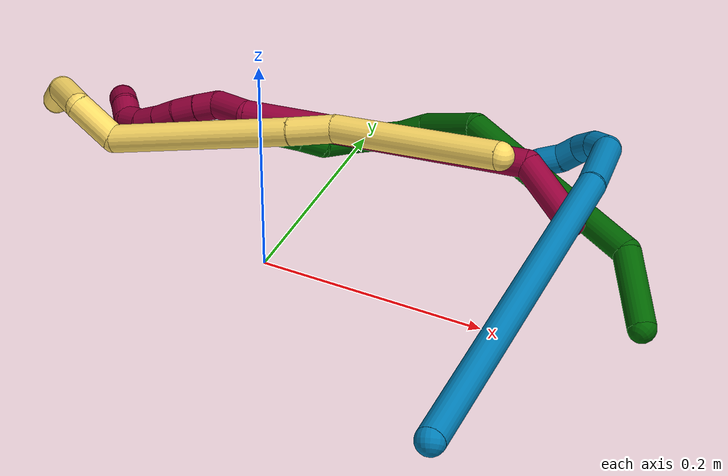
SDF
<sdf version="1.7">
 <world name="default">
  <model name="5">
   <static>0</static>
   <link name="5">
    <collision name="collision-cylinder-e_1_1_4">
     <pose>-0.073235 -0.017599 0.027775 0.564764 -1.14879 -0.371219</pose>
     <geometry><cylinder><radius>0.0125</radius><length>0.160556</length></cylinder></geometry>
     <surface>
      <friction><ode><mu>1.16</mu><mu2>1.16</mu2><slip1>0</slip1><slip2>0</slip2></ode></friction>
      <contact><ode><kp>1e+06</kp><kd>1</kd><max_vel>0</max_vel><min_depth>0.001</min_depth></ode></contact>
     </surface>
    </collision>
    <visual name="visual-cylinder-e_1_1_4">
     <pose>-0.073235 -0.017599 0.027775 0.564764 -1.14879 -0.371219</pose>
     <geometry><cylinder><radius>0.0125</radius><length>0.160556</length></cylinder></geometry>
     <material><ambient>1 0.858824 0.4 1</ambient></material>
    </visual>
    <collision name="collision-cylinder-e_2_4_5">
     <pose>-0.165169 -0.033636 0.06393 -0.184233 -1.14311 0.118688</pose>
     <geometry><cylinder><radius>0.0125</radius><length>0.0411</length></cylinder></geometry>
     <surface>
      <friction><ode><mu>1.16</mu><mu2>1.16</mu2><slip1>0</slip1><slip2>0</slip2></ode></friction>
      <contact><ode><kp>1e+06</kp><kd>1</kd><max_vel>0</max_vel><min_depth>0.001</min_depth></ode></contact>
     </surface>
    </collision>
    <visual name="visual-cylinder-e_2_4_5">
     <pose>-0.165169 -0.033636 0.06393 -0.184233 -1.14311 0.118688</pose>
     <geometry><cylinder><radius>0.0125</radius><length>0.0411</length></cylinder></geometry>
     <material><ambient>1 0.858824 0.4 1</ambient></material>
    </visual>
    <collision name="collision-cylinder-e_3_5_6">
     <pose>-0.261281 -0.031488 0.108441 -0.016234 -1.13406 0.010338</pose>
     <geometry><cylinder><radius>0.0125</radius><length>0.170862</length></cylinder></geometry>
     <surface>
      <friction><ode><mu>1.16</mu><mu2>1.16</mu2><slip1>0</slip1><slip2>0</slip2></ode></friction>
      <contact><ode><kp>1e+06</kp><kd>1</kd><max_vel>0</max_vel><min_depth>0.001</min_depth></ode></contact>
     </surface>
    </collision>
    <visual name="visual-cylinder-e_3_5_6">
     <pose>-0.261281 -0.031488 0.108441 -0.016234 -1.13406 0.010338</pose>
     <geometry><cylinder><radius>0.0125</radius><length>0.170862</length></cylinder></geometry>
     <material><ambient>1 0.858824 0.4 1</ambient></material>
    </visual>
    <collision name="collision-cylinder-e_4_6_7">
     <pose>-0.359802 -0.038319 0.139984 2.12475 -1.179 -1.75224</pose>
     <geometry><cylinder><radius>0.0125</radius><length>0.045681</length></cylinder></geometry>
     <surface>
      <friction><ode><mu>1.16</mu><mu2>1.16</mu2><slip1>0</slip1><slip2>0</slip2></ode></friction>
      <contact><ode><kp>1e+06</kp><kd>1</kd><max_vel>0</max_vel><min_depth>0.001</min_depth></ode></contact>
     </surface>
    </collision>
    <visual name="visual-cylinder-e_4_6_7">
     <pose>-0.359802 -0.038319 0.139984 2.12475 -1.179 -1.75224</pose>
     <geometry><cylinder><radius>0.0125</radius><length>0.045681</length></cylinder></geometry>
     <material><ambient>1 0.858824 0.4 1</ambient></material>
    </visual>
    <collision name="collision-cylinder-e_5_7_8">
     <pose>-0.396109 -0.063916 0.143349 1.15846 -0.653562 -0.436311</pose>
     <geometry><cylinder><radius>0.0125</radius><length>0.049989</length></cylinder></geometry>
     <surface>
      <friction><ode><mu>1.16</mu><mu2>1.16</mu2><slip1>0</slip1><slip2>0</slip2></ode></friction>
      <contact><ode><kp>1e+06</kp><kd>1</kd><max_vel>0</max_vel><min_depth>0.001</min_depth></ode></contact>
     </surface>
    </collision>
    <visual name="visual-cylinder-e_5_7_8">
     <pose>-0.396109 -0.063916 0.143349 1.15846 -0.653562 -0.436311</pose>
     <geometry><cylinder><radius>0.0125</radius><length>0.049989</length></cylinder></geometry>
     <material><ambient>1 0.858824 0.4 1</ambient></material>
    </visual>
    <collision name="collision-cylinder-e_6_8_2">
     <pose>-0.416345 -0.090334 0.163941 0.577561 -0.322358 -0.096531</pose>
     <geometry><cylinder><radius>0.0125</radius><length>0.031812</length></cylinder></geometry>
     <surface>
      <friction><ode><mu>1.16</mu><mu2>1.16</mu2><slip1>0</slip1><slip2>0</slip2></ode></friction>
      <contact><ode><kp>1e+06</kp><kd>1</kd><max_vel>0</max_vel><min_depth>0.001</min_depth></ode></contact>
     </surface>
    </collision>
    <visual name="visual-cylinder-e_6_8_2">
     <pose>-0.416345 -0.090334 0.163941 0.577561 -0.322358 -0.096531</pose>
     <geometry><cylinder><radius>0.0125</radius><length>0.031812</length></cylinder></geometry>
     <material><ambient>1 0.858824 0.4 1</ambient></material>
    </visual>
    <collision name="collision-sphere-2">
     <pose>-0.421384 -0.098571 0.17658 0 -0 0</pose>
     <geometry><sphere><radius>0.0125</radius></sphere></geometry>
     <surface>
      <friction><ode><mu>1.16</mu><mu2>1.16</mu2><slip1>0</slip1><slip2>0</slip2></ode></friction>
      <contact><ode><kp>1e+06</kp><kd>1</kd><max_vel>0</max_vel><min_depth>0.001</min_depth></ode></contact>
     </surface>
    </collision>
    <visual name="visual-sphere-2">
     <pose>-0.421384 -0.098571 0.17658 0 -0 0</pose>
     <geometry><sphere><radius>0.0125</radius></sphere></geometry>
     <material><ambient>1 0.858824 0.4 1</ambient></material>
    </visual>
    <collision name="collision-sphere-4">
     <pose>-0.14647 -0.035197 0.055551 0 -0 0</pose>
     <geometry><sphere><radius>0.0125</radius></sphere></geometry>
     <surface>
      <friction><ode><mu>1.16</mu><mu2>1.16</mu2><slip1>0</slip1><slip2>0</slip2></ode></friction>
      <contact><ode><kp>1e+06</kp><kd>1</kd><max_vel>0</max_vel><min_depth>0.001</min_depth></ode></contact>
     </surface>
    </collision>
    <visual name="visual-sphere-4">
     <pose>-0.14647 -0.035197 0.055551 0 -0 0</pose>
     <geometry><sphere><radius>0.0125</radius></sphere></geometry>
     <material><ambient>1 0.858824 0.4 1</ambient></material>
    </visual>
    <collision name="collision-sphere-1">
     <geometry><sphere><radius>0.0125</radius></sphere></geometry>
     <surface>
      <friction><ode><mu>1.16</mu><mu2>1.16</mu2><slip1>0</slip1><slip2>0</slip2></ode></friction>
      <contact><ode><kp>1e+06</kp><kd>1</kd><max_vel>0</max_vel><min_depth>0.001</min_depth></ode></contact>
     </surface>
    </collision>
    <visual name="visual-sphere-1">
     <geometry><sphere><radius>0.0125</radius></sphere></geometry>
     <material><ambient>1 0.858824 0.4 1</ambient></material>
    </visual>
    <collision name="collision-sphere-8">
     <pose>-0.411306 -0.082097 0.151301 0 -0 0</pose>
     <geometry><sphere><radius>0.0125</radius></sphere></geometry>
     <surface>
      <friction><ode><mu>1.16</mu><mu2>1.16</mu2><slip1>0</slip1><slip2>0</slip2></ode></friction>
      <contact><ode><kp>1e+06</kp><kd>1</kd><max_vel>0</max_vel><min_depth>0.001</min_depth></ode></contact>
     </surface>
    </collision>
    <visual name="visual-sphere-8">
     <pose>-0.411306 -0.082097 0.151301 0 -0 0</pose>
     <geometry><sphere><radius>0.0125</radius></sphere></geometry>
     <material><ambient>1 0.858824 0.4 1</ambient></material>
    </visual>
    <collision name="collision-sphere-5">
     <pose>-0.183869 -0.032074 0.07231 0 -0 0</pose>
     <geometry><sphere><radius>0.0125</radius></sphere></geometry>
     <surface>
      <friction><ode><mu>1.16</mu><mu2>1.16</mu2><slip1>0</slip1><slip2>0</slip2></ode></friction>
      <contact><ode><kp>1e+06</kp><kd>1</kd><max_vel>0</max_vel><min_depth>0.001</min_depth></ode></contact>
     </surface>
    </collision>
    <visual name="visual-sphere-5">
     <pose>-0.183869 -0.032074 0.07231 0 -0 0</pose>
     <geometry><sphere><radius>0.0125</radius></sphere></geometry>
     <material><ambient>1 0.858824 0.4 1</ambient></material>
    </visual>
    <collision name="collision-sphere-6">
     <pose>-0.338693 -0.030901 0.144572 0 -0 0</pose>
     <geometry><sphere><radius>0.0125</radius></sphere></geometry>
     <surface>
      <friction><ode><mu>1.16</mu><mu2>1.16</mu2><slip1>0</slip1><slip2>0</slip2></ode></friction>
      <contact><ode><kp>1e+06</kp><kd>1</kd><max_vel>0</max_vel><min_depth>0.001</min_depth></ode></contact>
     </surface>
    </collision>
    <visual name="visual-sphere-6">
     <pose>-0.338693 -0.030901 0.144572 0 -0 0</pose>
     <geometry><sphere><radius>0.0125</radius></sphere></geometry>
     <material><ambient>1 0.858824 0.4 1</ambient></material>
    </visual>
    <collision name="collision-sphere-7">
     <pose>-0.380912 -0.045736 0.135396 0 -0 0</pose>
     <geometry><sphere><radius>0.0125</radius></sphere></geometry>
     <surface>
      <friction><ode><mu>1.16</mu><mu2>1.16</mu2><slip1>0</slip1><slip2>0</slip2></ode></friction>
      <contact><ode><kp>1e+06</kp><kd>1</kd><max_vel>0</max_vel><min_depth>0.001</min_depth></ode></contact>
     </surface>
    </collision>
    <visual name="visual-sphere-7">
     <pose>-0.380912 -0.045736 0.135396 0 -0 0</pose>
     <geometry><sphere><radius>0.0125</radius></sphere></geometry>
     <material><ambient>1 0.858824 0.4 1</ambient></material>
    </visual>
    <inertial>
     <pose>-0.225343 -0.034815 0.088782 0 -0 0</pose>
     <mass>0.5</mass>
     <inertia>
      <ixx>0.000237</ixx>
      <ixy>0</ixy>
      <ixz>0</ixz>
      <iyy>0.000722</iyy>
      <iyz>0</iyz>
      <izz>0.000829</izz>
     </inertia>
    </inertial>
   </link>
   <pose>0.178007 0.081962 0.115296 3.07377 0.182267 0.111667</pose>
  </model>
  <model name="6">
   <static>0</static>
   <link name="6">
    <collision name="collision-cylinder-e_1_1_4">
     <pose>-0.022467 -0.003314 0.027411 0.120321 -0.683058 -0.042814</pose>
     <geometry><cylinder><radius>0.0125</radius><length>0.071193</length></cylinder></geometry>
     <surface>
      <friction><ode><mu>1.16</mu><mu2>1.16</mu2><slip1>0</slip1><slip2>0</slip2></ode></friction>
      <contact><ode><kp>1e+06</kp><kd>1</kd><max_vel>0</max_vel><min_depth>0.001</min_depth></ode></contact>
     </surface>
    </collision>
    <visual name="visual-cylinder-e_1_1_4">
     <pose>-0.022467 -0.003314 0.027411 0.120321 -0.683058 -0.042814</pose>
     <geometry><cylinder><radius>0.0125</radius><length>0.071193</length></cylinder></geometry>
     <material><ambient>0 0.392157 0.003922 1</ambient></material>
    </visual>
    <collision name="collision-cylinder-e_2_4_5">
     <pose>-0.13602 0.013402 0.089274 -0.526624 -1.15836 0.349012</pose>
     <geometry><cylinder><radius>0.0125</radius><length>0.198843</length></cylinder></geometry>
     <surface>
      <friction><ode><mu>1.16</mu><mu2>1.16</mu2><slip1>0</slip1><slip2>0</slip2></ode></friction>
      <contact><ode><kp>1e+06</kp><kd>1</kd><max_vel>0</max_vel><min_depth>0.001</min_depth></ode></contact>
     </surface>
    </collision>
    <visual name="visual-cylinder-e_2_4_5">
     <pose>-0.13602 0.013402 0.089274 -0.526624 -1.15836 0.349012</pose>
     <geometry><cylinder><radius>0.0125</radius><length>0.198843</length></cylinder></geometry>
     <material><ambient>0 0.392157 0.003922 1</ambient></material>
    </visual>
    <collision name="collision-cylinder-e_3_5_6">
     <pose>-0.25143 0.052959 0.124698 -1.5211 -0.893805 0.855658</pose>
     <geometry><cylinder><radius>0.0125</radius><length>0.062418</length></cylinder></geometry>
     <surface>
      <friction><ode><mu>1.16</mu><mu2>1.16</mu2><slip1>0</slip1><slip2>0</slip2></ode></friction>
      <contact><ode><kp>1e+06</kp><kd>1</kd><max_vel>0</max_vel><min_depth>0.001</min_depth></ode></contact>
     </surface>
    </collision>
    <visual name="visual-cylinder-e_3_5_6">
     <pose>-0.25143 0.052959 0.124698 -1.5211 -0.893805 0.855658</pose>
     <geometry><cylinder><radius>0.0125</radius><length>0.062418</length></cylinder></geometry>
     <material><ambient>0 0.392157 0.003922 1</ambient></material>
    </visual>
    <collision name="collision-cylinder-e_4_6_7">
     <pose>-0.286294 0.080819 0.120897 -2.09086 -0.831758 1.30206</pose>
     <geometry><cylinder><radius>0.0125</radius><length>0.028514</length></cylinder></geometry>
     <surface>
      <friction><ode><mu>1.16</mu><mu2>1.16</mu2><slip1>0</slip1><slip2>0</slip2></ode></friction>
      <contact><ode><kp>1e+06</kp><kd>1</kd><max_vel>0</max_vel><min_depth>0.001</min_depth></ode></contact>
     </surface>
    </collision>
    <visual name="visual-cylinder-e_4_6_7">
     <pose>-0.286294 0.080819 0.120897 -2.09086 -0.831758 1.30206</pose>
     <geometry><cylinder><radius>0.0125</radius><length>0.028514</length></cylinder></geometry>
     <material><ambient>0 0.392157 0.003922 1</ambient></material>
    </visual>
    <collision name="collision-cylinder-e_5_7_8">
     <pose>-0.314751 0.08711 0.098862 3.02378 -0.800594 -2.86462</pose>
     <geometry><cylinder><radius>0.0125</radius><length>0.049931</length></cylinder></geometry>
     <surface>
      <friction><ode><mu>1.16</mu><mu2>1.16</mu2><slip1>0</slip1><slip2>0</slip2></ode></friction>
      <contact><ode><kp>1e+06</kp><kd>1</kd><max_vel>0</max_vel><min_depth>0.001</min_depth></ode></contact>
     </surface>
    </collision>
    <visual name="visual-cylinder-e_5_7_8">
     <pose>-0.314751 0.08711 0.098862 3.02378 -0.800594 -2.86462</pose>
     <geometry><cylinder><radius>0.0125</radius><length>0.049931</length></cylinder></geometry>
     <material><ambient>0 0.392157 0.003922 1</ambient></material>
    </visual>
    <collision name="collision-cylinder-e_6_8_9">
     <pose>-0.339536 0.082062 0.07208 2.83589 -0.602442 -2.22092</pose>
     <geometry><cylinder><radius>0.0125</radius><length>0.024233</length></cylinder></geometry>
     <surface>
      <friction><ode><mu>1.16</mu><mu2>1.16</mu2><slip1>0</slip1><slip2>0</slip2></ode></friction>
      <contact><ode><kp>1e+06</kp><kd>1</kd><max_vel>0</max_vel><min_depth>0.001</min_depth></ode></contact>
     </surface>
    </collision>
    <visual name="visual-cylinder-e_6_8_9">
     <pose>-0.339536 0.082062 0.07208 2.83589 -0.602442 -2.22092</pose>
     <geometry><cylinder><radius>0.0125</radius><length>0.024233</length></cylinder></geometry>
     <material><ambient>0 0.392157 0.003922 1</ambient></material>
    </visual>
    <collision name="collision-cylinder-e_7_9_10">
     <pose>-0.355403 0.073744 0.0564 2.42979 -0.835993 -1.7479</pose>
     <geometry><cylinder><radius>0.0125</radius><length>0.024263</length></cylinder></geometry>
     <surface>
      <friction><ode><mu>1.16</mu><mu2>1.16</mu2><slip1>0</slip1><slip2>0</slip2></ode></friction>
      <contact><ode><kp>1e+06</kp><kd>1</kd><max_vel>0</max_vel><min_depth>0.001</min_depth></ode></contact>
     </surface>
    </collision>
    <visual name="visual-cylinder-e_7_9_10">
     <pose>-0.355403 0.073744 0.0564 2.42979 -0.835993 -1.7479</pose>
     <geometry><cylinder><radius>0.0125</radius><length>0.024263</length></cylinder></geometry>
     <material><ambient>0 0.392157 0.003922 1</ambient></material>
    </visual>
    <collision name="collision-cylinder-e_8_10_11">
     <pose>-0.372106 0.064422 0.044725 2.51316 -0.84603 -1.89109</pose>
     <geometry><cylinder><radius>0.0125</radius><length>0.020574</length></cylinder></geometry>
     <surface>
      <friction><ode><mu>1.16</mu><mu2>1.16</mu2><slip1>0</slip1><slip2>0</slip2></ode></friction>
      <contact><ode><kp>1e+06</kp><kd>1</kd><max_vel>0</max_vel><min_depth>0.001</min_depth></ode></contact>
     </surface>
    </collision>
    <visual name="visual-cylinder-e_8_10_11">
     <pose>-0.372106 0.064422 0.044725 2.51316 -0.84603 -1.89109</pose>
     <geometry><cylinder><radius>0.0125</radius><length>0.020574</length></cylinder></geometry>
     <material><ambient>0 0.392157 0.003922 1</ambient></material>
    </visual>
    <collision name="collision-cylinder-e_9_11_2">
     <pose>-0.384965 0.05479 0.032719 2.42757 -0.540993 -1.27855</pose>
     <geometry><cylinder><radius>0.0125</radius><length>0.020032</length></cylinder></geometry>
     <surface>
      <friction><ode><mu>1.16</mu><mu2>1.16</mu2><slip1>0</slip1><slip2>0</slip2></ode></friction>
      <contact><ode><kp>1e+06</kp><kd>1</kd><max_vel>0</max_vel><min_depth>0.001</min_depth></ode></contact>
     </surface>
    </collision>
    <visual name="visual-cylinder-e_9_11_2">
     <pose>-0.384965 0.05479 0.032719 2.42757 -0.540993 -1.27855</pose>
     <geometry><cylinder><radius>0.0125</radius><length>0.020032</length></cylinder></geometry>
     <material><ambient>0 0.392157 0.003922 1</ambient></material>
    </visual>
    <collision name="collision-sphere-2">
     <pose>-0.390123 0.049168 0.026231 0 -0 0</pose>
     <geometry><sphere><radius>0.0125</radius></sphere></geometry>
     <surface>
      <friction><ode><mu>1.16</mu><mu2>1.16</mu2><slip1>0</slip1><slip2>0</slip2></ode></friction>
      <contact><ode><kp>1e+06</kp><kd>1</kd><max_vel>0</max_vel><min_depth>0.001</min_depth></ode></contact>
     </surface>
    </collision>
    <visual name="visual-sphere-2">
     <pose>-0.390123 0.049168 0.026231 0 -0 0</pose>
     <geometry><sphere><radius>0.0125</radius></sphere></geometry>
     <material><ambient>0 0.392157 0.003922 1</ambient></material>
    </visual>
    <collision name="collision-sphere-11">
     <pose>-0.379807 0.060413 0.039208 0 -0 0</pose>
     <geometry><sphere><radius>0.0125</radius></sphere></geometry>
     <surface>
      <friction><ode><mu>1.16</mu><mu2>1.16</mu2><slip1>0</slip1><slip2>0</slip2></ode></friction>
      <contact><ode><kp>1e+06</kp><kd>1</kd><max_vel>0</max_vel><min_depth>0.001</min_depth></ode></contact>
     </surface>
    </collision>
    <visual name="visual-sphere-11">
     <pose>-0.379807 0.060413 0.039208 0 -0 0</pose>
     <geometry><sphere><radius>0.0125</radius></sphere></geometry>
     <material><ambient>0 0.392157 0.003922 1</ambient></material>
    </visual>
    <collision name="collision-sphere-10">
     <pose>-0.364404 0.068431 0.050242 0 -0 0</pose>
     <geometry><sphere><radius>0.0125</radius></sphere></geometry>
     <surface>
      <friction><ode><mu>1.16</mu><mu2>1.16</mu2><slip1>0</slip1><slip2>0</slip2></ode></friction>
      <contact><ode><kp>1e+06</kp><kd>1</kd><max_vel>0</max_vel><min_depth>0.001</min_depth></ode></contact>
     </surface>
    </collision>
    <visual name="visual-sphere-10">
     <pose>-0.364404 0.068431 0.050242 0 -0 0</pose>
     <geometry><sphere><radius>0.0125</radius></sphere></geometry>
     <material><ambient>0 0.392157 0.003922 1</ambient></material>
    </visual>
    <collision name="collision-sphere-9">
     <pose>-0.346402 0.079057 0.062559 0 -0 0</pose>
     <geometry><sphere><radius>0.0125</radius></sphere></geometry>
     <surface>
      <friction><ode><mu>1.16</mu><mu2>1.16</mu2><slip1>0</slip1><slip2>0</slip2></ode></friction>
      <contact><ode><kp>1e+06</kp><kd>1</kd><max_vel>0</max_vel><min_depth>0.001</min_depth></ode></contact>
     </surface>
    </collision>
    <visual name="visual-sphere-9">
     <pose>-0.346402 0.079057 0.062559 0 -0 0</pose>
     <geometry><sphere><radius>0.0125</radius></sphere></geometry>
     <material><ambient>0 0.392157 0.003922 1</ambient></material>
    </visual>
    <collision name="collision-sphere-4">
     <pose>-0.044935 -0.006628 0.054821 0 -0 0</pose>
     <geometry><sphere><radius>0.0125</radius></sphere></geometry>
     <surface>
      <friction><ode><mu>1.16</mu><mu2>1.16</mu2><slip1>0</slip1><slip2>0</slip2></ode></friction>
      <contact><ode><kp>1e+06</kp><kd>1</kd><max_vel>0</max_vel><min_depth>0.001</min_depth></ode></contact>
     </surface>
    </collision>
    <visual name="visual-sphere-4">
     <pose>-0.044935 -0.006628 0.054821 0 -0 0</pose>
     <geometry><sphere><radius>0.0125</radius></sphere></geometry>
     <material><ambient>0 0.392157 0.003922 1</ambient></material>
    </visual>
    <collision name="collision-sphere-1">
     <geometry><sphere><radius>0.0125</radius></sphere></geometry>
     <surface>
      <friction><ode><mu>1.16</mu><mu2>1.16</mu2><slip1>0</slip1><slip2>0</slip2></ode></friction>
      <contact><ode><kp>1e+06</kp><kd>1</kd><max_vel>0</max_vel><min_depth>0.001</min_depth></ode></contact>
     </surface>
    </collision>
    <visual name="visual-sphere-1">
     <geometry><sphere><radius>0.0125</radius></sphere></geometry>
     <material><ambient>0 0.392157 0.003922 1</ambient></material>
    </visual>
    <collision name="collision-sphere-8">
     <pose>-0.33267 0.085066 0.0816 0 -0 0</pose>
     <geometry><sphere><radius>0.0125</radius></sphere></geometry>
     <surface>
      <friction><ode><mu>1.16</mu><mu2>1.16</mu2><slip1>0</slip1><slip2>0</slip2></ode></friction>
      <contact><ode><kp>1e+06</kp><kd>1</kd><max_vel>0</max_vel><min_depth>0.001</min_depth></ode></contact>
     </surface>
    </collision>
    <visual name="visual-sphere-8">
     <pose>-0.33267 0.085066 0.0816 0 -0 0</pose>
     <geometry><sphere><radius>0.0125</radius></sphere></geometry>
     <material><ambient>0 0.392157 0.003922 1</ambient></material>
    </visual>
    <collision name="collision-sphere-5">
     <pose>-0.227104 0.033433 0.123726 0 -0 0</pose>
     <geometry><sphere><radius>0.0125</radius></sphere></geometry>
     <surface>
      <friction><ode><mu>1.16</mu><mu2>1.16</mu2><slip1>0</slip1><slip2>0</slip2></ode></friction>
      <contact><ode><kp>1e+06</kp><kd>1</kd><max_vel>0</max_vel><min_depth>0.001</min_depth></ode></contact>
     </surface>
    </collision>
    <visual name="visual-sphere-5">
     <pose>-0.227104 0.033433 0.123726 0 -0 0</pose>
     <geometry><sphere><radius>0.0125</radius></sphere></geometry>
     <material><ambient>0 0.392157 0.003922 1</ambient></material>
    </visual>
    <collision name="collision-sphere-6">
     <pose>-0.275757 0.072486 0.125669 0 -0 0</pose>
     <geometry><sphere><radius>0.0125</radius></sphere></geometry>
     <surface>
      <friction><ode><mu>1.16</mu><mu2>1.16</mu2><slip1>0</slip1><slip2>0</slip2></ode></friction>
      <contact><ode><kp>1e+06</kp><kd>1</kd><max_vel>0</max_vel><min_depth>0.001</min_depth></ode></contact>
     </surface>
    </collision>
    <visual name="visual-sphere-6">
     <pose>-0.275757 0.072486 0.125669 0 -0 0</pose>
     <geometry><sphere><radius>0.0125</radius></sphere></geometry>
     <material><ambient>0 0.392157 0.003922 1</ambient></material>
    </visual>
    <collision name="collision-sphere-7">
     <pose>-0.296831 0.089153 0.116125 0 -0 0</pose>
     <geometry><sphere><radius>0.0125</radius></sphere></geometry>
     <surface>
      <friction><ode><mu>1.16</mu><mu2>1.16</mu2><slip1>0</slip1><slip2>0</slip2></ode></friction>
      <contact><ode><kp>1e+06</kp><kd>1</kd><max_vel>0</max_vel><min_depth>0.001</min_depth></ode></contact>
     </surface>
    </collision>
    <visual name="visual-sphere-7">
     <pose>-0.296831 0.089153 0.116125 0 -0 0</pose>
     <geometry><sphere><radius>0.0125</radius></sphere></geometry>
     <material><ambient>0 0.392157 0.003922 1</ambient></material>
    </visual>
    <inertial>
     <pose>-0.200874 0.037179 0.081121 0 -0 0</pose>
     <mass>0.5</mass>
     <inertia>
      <ixx>0.00034</ixx>
      <ixy>0</ixy>
      <ixz>0</ixz>
      <iyy>0.000806</iyy>
      <iyz>0</iyz>
      <izz>0.000521</izz>
     </inertia>
    </inertial>
   </link>
   <pose>0.32372 0.045172 0.011474 -1.31406 0.189152 -0.087514</pose>
  </model>
  <model name="8">
   <static>0</static>
   <link name="8">
    <collision name="collision-cylinder-e_1_1_4">
     <pose>-0.031686 -0.004825 0.003333 0.966213 -1.3878 -0.822963</pose>
     <geometry><cylinder><radius>0.0125</radius><length>0.064449</length></cylinder></geometry>
     <surface>
      <friction><ode><mu>1.16</mu><mu2>1.16</mu2><slip1>0</slip1><slip2>0</slip2></ode></friction>
      <contact><ode><kp>1e+06</kp><kd>1</kd><max_vel>0</max_vel><min_depth>0.001</min_depth></ode></contact>
     </surface>
    </collision>
    <visual name="visual-cylinder-e_1_1_4">
     <pose>-0.031686 -0.004825 0.003333 0.966213 -1.3878 -0.822963</pose>
     <geometry><cylinder><radius>0.0125</radius><length>0.064449</length></cylinder></geometry>
     <material><ambient>0.584314 0 0.227451 1</ambient></material>
    </visual>
    <collision name="collision-cylinder-e_2_4_5">
     <pose>-0.153549 0.008635 0.096162 -0.201533 -0.778966 0.082953</pose>
     <geometry><cylinder><radius>0.0125</radius><length>0.256715</length></cylinder></geometry>
     <surface>
      <friction><ode><mu>1.16</mu><mu2>1.16</mu2><slip1>0</slip1><slip2>0</slip2></ode></friction>
      <contact><ode><kp>1e+06</kp><kd>1</kd><max_vel>0</max_vel><min_depth>0.001</min_depth></ode></contact>
     </surface>
    </collision>
    <visual name="visual-cylinder-e_2_4_5">
     <pose>-0.153549 0.008635 0.096162 -0.201533 -0.778966 0.082953</pose>
     <geometry><cylinder><radius>0.0125</radius><length>0.256715</length></cylinder></geometry>
     <material><ambient>0.584314 0 0.227451 1</ambient></material>
    </visual>
    <collision name="collision-cylinder-e_3_5_6">
     <pose>-0.25684 0.021868 0.196953 0.420592 -0.814416 -0.183613</pose>
     <geometry><cylinder><radius>0.0125</radius><length>0.03606</length></cylinder></geometry>
     <surface>
      <friction><ode><mu>1.16</mu><mu2>1.16</mu2><slip1>0</slip1><slip2>0</slip2></ode></friction>
      <contact><ode><kp>1e+06</kp><kd>1</kd><max_vel>0</max_vel><min_depth>0.001</min_depth></ode></contact>
     </surface>
    </collision>
    <visual name="visual-cylinder-e_3_5_6">
     <pose>-0.25684 0.021868 0.196953 0.420592 -0.814416 -0.183613</pose>
     <geometry><cylinder><radius>0.0125</radius><length>0.03606</length></cylinder></geometry>
     <material><ambient>0.584314 0 0.227451 1</ambient></material>
    </visual>
    <collision name="collision-cylinder-e_4_6_7">
     <pose>-0.274407 0.017764 0.217277 -0.104679 -0.456053 0.024313</pose>
     <geometry><cylinder><radius>0.0125</radius><length>0.020224</length></cylinder></geometry>
     <surface>
      <friction><ode><mu>1.16</mu><mu2>1.16</mu2><slip1>0</slip1><slip2>0</slip2></ode></friction>
      <contact><ode><kp>1e+06</kp><kd>1</kd><max_vel>0</max_vel><min_depth>0.001</min_depth></ode></contact>
     </surface>
    </collision>
    <visual name="visual-cylinder-e_4_6_7">
     <pose>-0.274407 0.017764 0.217277 -0.104679 -0.456053 0.024313</pose>
     <geometry><cylinder><radius>0.0125</radius><length>0.020224</length></cylinder></geometry>
     <material><ambient>0.584314 0 0.227451 1</ambient></material>
    </visual>
    <collision name="collision-cylinder-e_5_7_8">
     <pose>-0.283151 0.019207 0.235887 -0.051504 -0.420613 0.010997</pose>
     <geometry><cylinder><radius>0.0125</radius><length>0.02102</length></cylinder></geometry>
     <surface>
      <friction><ode><mu>1.16</mu><mu2>1.16</mu2><slip1>0</slip1><slip2>0</slip2></ode></friction>
      <contact><ode><kp>1e+06</kp><kd>1</kd><max_vel>0</max_vel><min_depth>0.001</min_depth></ode></contact>
     </surface>
    </collision>
    <visual name="visual-cylinder-e_5_7_8">
     <pose>-0.283151 0.019207 0.235887 -0.051504 -0.420613 0.010997</pose>
     <geometry><cylinder><radius>0.0125</radius><length>0.02102</length></cylinder></geometry>
     <material><ambient>0.584314 0 0.227451 1</ambient></material>
    </visual>
    <collision name="collision-cylinder-e_6_8_9">
     <pose>-0.290935 0.019017 0.255286 0.069526 -0.340987 -0.011975</pose>
     <geometry><cylinder><radius>0.0125</radius><length>0.020887</length></cylinder></geometry>
     <surface>
      <friction><ode><mu>1.16</mu><mu2>1.16</mu2><slip1>0</slip1><slip2>0</slip2></ode></friction>
      <contact><ode><kp>1e+06</kp><kd>1</kd><max_vel>0</max_vel><min_depth>0.001</min_depth></ode></contact>
     </surface>
    </collision>
    <visual name="visual-cylinder-e_6_8_9">
     <pose>-0.290935 0.019017 0.255286 0.069526 -0.340987 -0.011975</pose>
     <geometry><cylinder><radius>0.0125</radius><length>0.020887</length></cylinder></geometry>
     <material><ambient>0.584314 0 0.227451 1</ambient></material>
    </visual>
    <collision name="collision-cylinder-e_7_9_10">
     <pose>-0.298902 0.017089 0.274272 0.134842 -0.450504 -0.030942</pose>
     <geometry><cylinder><radius>0.0125</radius><length>0.020555</length></cylinder></geometry>
     <surface>
      <friction><ode><mu>1.16</mu><mu2>1.16</mu2><slip1>0</slip1><slip2>0</slip2></ode></friction>
      <contact><ode><kp>1e+06</kp><kd>1</kd><max_vel>0</max_vel><min_depth>0.001</min_depth></ode></contact>
     </surface>
    </collision>
    <visual name="visual-cylinder-e_7_9_10">
     <pose>-0.298902 0.017089 0.274272 0.134842 -0.450504 -0.030942</pose>
     <geometry><cylinder><radius>0.0125</radius><length>0.020555</length></cylinder></geometry>
     <material><ambient>0.584314 0 0.227451 1</ambient></material>
    </visual>
    <collision name="collision-cylinder-e_8_10_11">
     <pose>-0.310027 0.012776 0.290288 0.421373 -0.725102 -0.161887</pose>
     <geometry><cylinder><radius>0.0125</radius><length>0.020053</length></cylinder></geometry>
     <surface>
      <friction><ode><mu>1.16</mu><mu2>1.16</mu2><slip1>0</slip1><slip2>0</slip2></ode></friction>
      <contact><ode><kp>1e+06</kp><kd>1</kd><max_vel>0</max_vel><min_depth>0.001</min_depth></ode></contact>
     </surface>
    </collision>
    <visual name="visual-cylinder-e_8_10_11">
     <pose>-0.310027 0.012776 0.290288 0.421373 -0.725102 -0.161887</pose>
     <geometry><cylinder><radius>0.0125</radius><length>0.020053</length></cylinder></geometry>
     <material><ambient>0.584314 0 0.227451 1</ambient></material>
    </visual>
    <collision name="collision-cylinder-e_9_11_12">
     <pose>-0.324426 0.003395 0.297776 1.46978 -0.884768 -0.809005</pose>
     <geometry><cylinder><radius>0.0125</radius><length>0.02003</length></cylinder></geometry>
     <surface>
      <friction><ode><mu>1.16</mu><mu2>1.16</mu2><slip1>0</slip1><slip2>0</slip2></ode></friction>
      <contact><ode><kp>1e+06</kp><kd>1</kd><max_vel>0</max_vel><min_depth>0.001</min_depth></ode></contact>
     </surface>
    </collision>
    <visual name="visual-cylinder-e_9_11_12">
     <pose>-0.324426 0.003395 0.297776 1.46978 -0.884768 -0.809005</pose>
     <geometry><cylinder><radius>0.0125</radius><length>0.02003</length></cylinder></geometry>
     <material><ambient>0.584314 0 0.227451 1</ambient></material>
    </visual>
    <collision name="collision-cylinder-e_10_12_2">
     <pose>-0.338172 -0.010414 0.301233 1.21136 -0.642667 -0.453115</pose>
     <geometry><cylinder><radius>0.0125</radius><length>0.020008</length></cylinder></geometry>
     <surface>
      <friction><ode><mu>1.16</mu><mu2>1.16</mu2><slip1>0</slip1><slip2>0</slip2></ode></friction>
      <contact><ode><kp>1e+06</kp><kd>1</kd><max_vel>0</max_vel><min_depth>0.001</min_depth></ode></contact>
     </surface>
    </collision>
    <visual name="visual-cylinder-e_10_12_2">
     <pose>-0.338172 -0.010414 0.301233 1.21136 -0.642667 -0.453115</pose>
     <geometry><cylinder><radius>0.0125</radius><length>0.020008</length></cylinder></geometry>
     <material><ambient>0.584314 0 0.227451 1</ambient></material>
    </visual>
    <collision name="collision-sphere-2">
     <pose>-0.344168 -0.01791 0.304049 0 -0 0</pose>
     <geometry><sphere><radius>0.0125</radius></sphere></geometry>
     <surface>
      <friction><ode><mu>1.16</mu><mu2>1.16</mu2><slip1>0</slip1><slip2>0</slip2></ode></friction>
      <contact><ode><kp>1e+06</kp><kd>1</kd><max_vel>0</max_vel><min_depth>0.001</min_depth></ode></contact>
     </surface>
    </collision>
    <visual name="visual-sphere-2">
     <pose>-0.344168 -0.01791 0.304049 0 -0 0</pose>
     <geometry><sphere><radius>0.0125</radius></sphere></geometry>
     <material><ambient>0.584314 0 0.227451 1</ambient></material>
    </visual>
    <collision name="collision-sphere-12">
     <pose>-0.332176 -0.002917 0.298416 0 -0 0</pose>
     <geometry><sphere><radius>0.0125</radius></sphere></geometry>
     <surface>
      <friction><ode><mu>1.16</mu><mu2>1.16</mu2><slip1>0</slip1><slip2>0</slip2></ode></friction>
      <contact><ode><kp>1e+06</kp><kd>1</kd><max_vel>0</max_vel><min_depth>0.001</min_depth></ode></contact>
     </surface>
    </collision>
    <visual name="visual-sphere-12">
     <pose>-0.332176 -0.002917 0.298416 0 -0 0</pose>
     <geometry><sphere><radius>0.0125</radius></sphere></geometry>
     <material><ambient>0.584314 0 0.227451 1</ambient></material>
    </visual>
    <collision name="collision-sphere-11">
     <pose>-0.316677 0.009707 0.297136 0 -0 0</pose>
     <geometry><sphere><radius>0.0125</radius></sphere></geometry>
     <surface>
      <friction><ode><mu>1.16</mu><mu2>1.16</mu2><slip1>0</slip1><slip2>0</slip2></ode></friction>
      <contact><ode><kp>1e+06</kp><kd>1</kd><max_vel>0</max_vel><min_depth>0.001</min_depth></ode></contact>
     </surface>
    </collision>
    <visual name="visual-sphere-11">
     <pose>-0.316677 0.009707 0.297136 0 -0 0</pose>
     <geometry><sphere><radius>0.0125</radius></sphere></geometry>
     <material><ambient>0.584314 0 0.227451 1</ambient></material>
    </visual>
    <collision name="collision-sphere-10">
     <pose>-0.303377 0.015846 0.28344 0 -0 0</pose>
     <geometry><sphere><radius>0.0125</radius></sphere></geometry>
     <surface>
      <friction><ode><mu>1.16</mu><mu2>1.16</mu2><slip1>0</slip1><slip2>0</slip2></ode></friction>
      <contact><ode><kp>1e+06</kp><kd>1</kd><max_vel>0</max_vel><min_depth>0.001</min_depth></ode></contact>
     </surface>
    </collision>
    <visual name="visual-sphere-10">
     <pose>-0.303377 0.015846 0.28344 0 -0 0</pose>
     <geometry><sphere><radius>0.0125</radius></sphere></geometry>
     <material><ambient>0.584314 0 0.227451 1</ambient></material>
    </visual>
    <collision name="collision-sphere-9">
     <pose>-0.294427 0.018333 0.265105 0 -0 0</pose>
     <geometry><sphere><radius>0.0125</radius></sphere></geometry>
     <surface>
      <friction><ode><mu>1.16</mu><mu2>1.16</mu2><slip1>0</slip1><slip2>0</slip2></ode></friction>
      <contact><ode><kp>1e+06</kp><kd>1</kd><max_vel>0</max_vel><min_depth>0.001</min_depth></ode></contact>
     </surface>
    </collision>
    <visual name="visual-sphere-9">
     <pose>-0.294427 0.018333 0.265105 0 -0 0</pose>
     <geometry><sphere><radius>0.0125</radius></sphere></geometry>
     <material><ambient>0.584314 0 0.227451 1</ambient></material>
    </visual>
    <collision name="collision-sphere-4">
     <pose>-0.063372 -0.009649 0.006666 0 -0 0</pose>
     <geometry><sphere><radius>0.0125</radius></sphere></geometry>
     <surface>
      <friction><ode><mu>1.16</mu><mu2>1.16</mu2><slip1>0</slip1><slip2>0</slip2></ode></friction>
      <contact><ode><kp>1e+06</kp><kd>1</kd><max_vel>0</max_vel><min_depth>0.001</min_depth></ode></contact>
     </surface>
    </collision>
    <visual name="visual-sphere-4">
     <pose>-0.063372 -0.009649 0.006666 0 -0 0</pose>
     <geometry><sphere><radius>0.0125</radius></sphere></geometry>
     <material><ambient>0.584314 0 0.227451 1</ambient></material>
    </visual>
    <collision name="collision-sphere-1">
     <geometry><sphere><radius>0.0125</radius></sphere></geometry>
     <surface>
      <friction><ode><mu>1.16</mu><mu2>1.16</mu2><slip1>0</slip1><slip2>0</slip2></ode></friction>
      <contact><ode><kp>1e+06</kp><kd>1</kd><max_vel>0</max_vel><min_depth>0.001</min_depth></ode></contact>
     </surface>
    </collision>
    <visual name="visual-sphere-1">
     <geometry><sphere><radius>0.0125</radius></sphere></geometry>
     <material><ambient>0.584314 0 0.227451 1</ambient></material>
    </visual>
    <collision name="collision-sphere-8">
     <pose>-0.287443 0.019701 0.245468 0 -0 0</pose>
     <geometry><sphere><radius>0.0125</radius></sphere></geometry>
     <surface>
      <friction><ode><mu>1.16</mu><mu2>1.16</mu2><slip1>0</slip1><slip2>0</slip2></ode></friction>
      <contact><ode><kp>1e+06</kp><kd>1</kd><max_vel>0</max_vel><min_depth>0.001</min_depth></ode></contact>
     </surface>
    </collision>
    <visual name="visual-sphere-8">
     <pose>-0.287443 0.019701 0.245468 0 -0 0</pose>
     <geometry><sphere><radius>0.0125</radius></sphere></geometry>
     <material><ambient>0.584314 0 0.227451 1</ambient></material>
    </visual>
    <collision name="collision-sphere-5">
     <pose>-0.243726 0.02692 0.185658 0 -0 0</pose>
     <geometry><sphere><radius>0.0125</radius></sphere></geometry>
     <surface>
      <friction><ode><mu>1.16</mu><mu2>1.16</mu2><slip1>0</slip1><slip2>0</slip2></ode></friction>
      <contact><ode><kp>1e+06</kp><kd>1</kd><max_vel>0</max_vel><min_depth>0.001</min_depth></ode></contact>
     </surface>
    </collision>
    <visual name="visual-sphere-5">
     <pose>-0.243726 0.02692 0.185658 0 -0 0</pose>
     <geometry><sphere><radius>0.0125</radius></sphere></geometry>
     <material><ambient>0.584314 0 0.227451 1</ambient></material>
    </visual>
    <collision name="collision-sphere-6">
     <pose>-0.269953 0.016816 0.208249 0 -0 0</pose>
     <geometry><sphere><radius>0.0125</radius></sphere></geometry>
     <surface>
      <friction><ode><mu>1.16</mu><mu2>1.16</mu2><slip1>0</slip1><slip2>0</slip2></ode></friction>
      <contact><ode><kp>1e+06</kp><kd>1</kd><max_vel>0</max_vel><min_depth>0.001</min_depth></ode></contact>
     </surface>
    </collision>
    <visual name="visual-sphere-6">
     <pose>-0.269953 0.016816 0.208249 0 -0 0</pose>
     <geometry><sphere><radius>0.0125</radius></sphere></geometry>
     <material><ambient>0.584314 0 0.227451 1</ambient></material>
    </visual>
    <collision name="collision-sphere-7">
     <pose>-0.27886 0.018713 0.226306 0 -0 0</pose>
     <geometry><sphere><radius>0.0125</radius></sphere></geometry>
     <surface>
      <friction><ode><mu>1.16</mu><mu2>1.16</mu2><slip1>0</slip1><slip2>0</slip2></ode></friction>
      <contact><ode><kp>1e+06</kp><kd>1</kd><max_vel>0</max_vel><min_depth>0.001</min_depth></ode></contact>
     </surface>
    </collision>
    <visual name="visual-sphere-7">
     <pose>-0.27886 0.018713 0.226306 0 -0 0</pose>
     <geometry><sphere><radius>0.0125</radius></sphere></geometry>
     <material><ambient>0.584314 0 0.227451 1</ambient></material>
    </visual>
    <inertial>
     <pose>-0.187851 0.008643 0.140276 0 -0 0</pose>
     <mass>0.5</mass>
     <inertia>
      <ixx>0.001074</ixx>
      <ixy>0</ixy>
      <ixz>0</ixz>
      <iyy>0.001519</iyy>
      <iyz>0</iyz>
      <izz>0.00086</izz>
     </inertia>
    </inertial>
   </link>
   <pose>0.23674 0.101838 0.052206 2.52997 0.559873 -0.445043</pose>
  </model>
  <model name="9">
   <static>0</static>
   <link name="9">
    <collision name="collision-cylinder-e_1_1_4">
     <pose>-0.021255 0.119667 -0.12661 -2.38438 -0.121408 0.30323</pose>
     <geometry><cylinder><radius>0.0125</radius><length>0.351009</length></cylinder></geometry>
     <surface>
      <friction><ode><mu>1.16</mu><mu2>1.16</mu2><slip1>0</slip1><slip2>0</slip2></ode></friction>
      <contact><ode><kp>1e+06</kp><kd>1</kd><max_vel>0</max_vel><min_depth>0.001</min_depth></ode></contact>
     </surface>
    </collision>
    <visual name="visual-cylinder-e_1_1_4">
     <pose>-0.021255 0.119667 -0.12661 -2.38438 -0.121408 0.30323</pose>
     <geometry><cylinder><radius>0.0125</radius><length>0.351009</length></cylinder></geometry>
     <material><ambient>0 0.490196 0.709804 1</ambient></material>
    </visual>
    <collision name="collision-cylinder-e_2_4_5">
     <pose>-0.041557 0.264907 -0.275647 -2.29075 0.028036 -0.061862</pose>
     <geometry><cylinder><radius>0.0125</radius><length>0.068057</length></cylinder></geometry>
     <surface>
      <friction><ode><mu>1.16</mu><mu2>1.16</mu2><slip1>0</slip1><slip2>0</slip2></ode></friction>
      <contact><ode><kp>1e+06</kp><kd>1</kd><max_vel>0</max_vel><min_depth>0.001</min_depth></ode></contact>
     </surface>
    </collision>
    <visual name="visual-cylinder-e_2_4_5">
     <pose>-0.041557 0.264907 -0.275647 -2.29075 0.028036 -0.061862</pose>
     <geometry><cylinder><radius>0.0125</radius><length>0.068057</length></cylinder></geometry>
     <material><ambient>0 0.490196 0.709804 1</ambient></material>
    </visual>
    <collision name="collision-cylinder-e_3_5_6">
     <pose>-0.033229 0.296741 -0.301773 -2.10434 0.792455 -1.26507</pose>
     <geometry><cylinder><radius>0.0125</radius><length>0.02071</length></cylinder></geometry>
     <surface>
      <friction><ode><mu>1.16</mu><mu2>1.16</mu2><slip1>0</slip1><slip2>0</slip2></ode></friction>
      <contact><ode><kp>1e+06</kp><kd>1</kd><max_vel>0</max_vel><min_depth>0.001</min_depth></ode></contact>
     </surface>
    </collision>
    <visual name="visual-cylinder-e_3_5_6">
     <pose>-0.033229 0.296741 -0.301773 -2.10434 0.792455 -1.26507</pose>
     <geometry><cylinder><radius>0.0125</radius><length>0.02071</length></cylinder></geometry>
     <material><ambient>0 0.490196 0.709804 1</ambient></material>
    </visual>
    <collision name="collision-cylinder-e_4_6_7">
     <pose>-0.017763 0.308949 -0.305523 -1.57967 0.936905 -0.944071</pose>
     <geometry><cylinder><radius>0.0125</radius><length>0.020087</length></cylinder></geometry>
     <surface>
      <friction><ode><mu>1.16</mu><mu2>1.16</mu2><slip1>0</slip1><slip2>0</slip2></ode></friction>
      <contact><ode><kp>1e+06</kp><kd>1</kd><max_vel>0</max_vel><min_depth>0.001</min_depth></ode></contact>
     </surface>
    </collision>
    <visual name="visual-cylinder-e_4_6_7">
     <pose>-0.017763 0.308949 -0.305523 -1.57967 0.936905 -0.944071</pose>
     <geometry><cylinder><radius>0.0125</radius><length>0.020087</length></cylinder></geometry>
     <material><ambient>0 0.490196 0.709804 1</ambient></material>
    </visual>
    <collision name="collision-cylinder-e_5_7_8">
     <pose>-0.000846 0.318318 -0.302284 -0.804496 1.07727 -0.497924</pose>
     <geometry><cylinder><radius>0.0125</radius><length>0.020041</length></cylinder></geometry>
     <surface>
      <friction><ode><mu>1.16</mu><mu2>1.16</mu2><slip1>0</slip1><slip2>0</slip2></ode></friction>
      <contact><ode><kp>1e+06</kp><kd>1</kd><max_vel>0</max_vel><min_depth>0.001</min_depth></ode></contact>
     </surface>
    </collision>
    <visual name="visual-cylinder-e_5_7_8">
     <pose>-0.000846 0.318318 -0.302284 -0.804496 1.07727 -0.497924</pose>
     <geometry><cylinder><radius>0.0125</radius><length>0.020041</length></cylinder></geometry>
     <material><ambient>0 0.490196 0.709804 1</ambient></material>
    </visual>
    <collision name="collision-cylinder-e_6_8_2">
     <pose>0.017862 0.322255 -0.297254 -0.289132 1.38937 -0.24143</pose>
     <geometry><cylinder><radius>0.0125</radius><length>0.020095</length></cylinder></geometry>
     <surface>
      <friction><ode><mu>1.16</mu><mu2>1.16</mu2><slip1>0</slip1><slip2>0</slip2></ode></friction>
      <contact><ode><kp>1e+06</kp><kd>1</kd><max_vel>0</max_vel><min_depth>0.001</min_depth></ode></contact>
     </surface>
    </collision>
    <visual name="visual-cylinder-e_6_8_2">
     <pose>0.017862 0.322255 -0.297254 -0.289132 1.38937 -0.24143</pose>
     <geometry><cylinder><radius>0.0125</radius><length>0.020095</length></cylinder></geometry>
     <material><ambient>0 0.490196 0.709804 1</ambient></material>
    </visual>
    <collision name="collision-sphere-2">
     <pose>0.027744 0.322772 -0.295517 0 -0 0</pose>
     <geometry><sphere><radius>0.0125</radius></sphere></geometry>
     <surface>
      <friction><ode><mu>1.16</mu><mu2>1.16</mu2><slip1>0</slip1><slip2>0</slip2></ode></friction>
      <contact><ode><kp>1e+06</kp><kd>1</kd><max_vel>0</max_vel><min_depth>0.001</min_depth></ode></contact>
     </surface>
    </collision>
    <visual name="visual-sphere-2">
     <pose>0.027744 0.322772 -0.295517 0 -0 0</pose>
     <geometry><sphere><radius>0.0125</radius></sphere></geometry>
     <material><ambient>0 0.490196 0.709804 1</ambient></material>
    </visual>
    <collision name="collision-sphere-4">
     <pose>-0.042511 0.239333 -0.253219 0 -0 0</pose>
     <geometry><sphere><radius>0.0125</radius></sphere></geometry>
     <surface>
      <friction><ode><mu>1.16</mu><mu2>1.16</mu2><slip1>0</slip1><slip2>0</slip2></ode></friction>
      <contact><ode><kp>1e+06</kp><kd>1</kd><max_vel>0</max_vel><min_depth>0.001</min_depth></ode></contact>
     </surface>
    </collision>
    <visual name="visual-sphere-4">
     <pose>-0.042511 0.239333 -0.253219 0 -0 0</pose>
     <geometry><sphere><radius>0.0125</radius></sphere></geometry>
     <material><ambient>0 0.490196 0.709804 1</ambient></material>
    </visual>
    <collision name="collision-sphere-1">
     <geometry><sphere><radius>0.0125</radius></sphere></geometry>
     <surface>
      <friction><ode><mu>1.16</mu><mu2>1.16</mu2><slip1>0</slip1><slip2>0</slip2></ode></friction>
      <contact><ode><kp>1e+06</kp><kd>1</kd><max_vel>0</max_vel><min_depth>0.001</min_depth></ode></contact>
     </surface>
    </collision>
    <visual name="visual-sphere-1">
     <geometry><sphere><radius>0.0125</radius></sphere></geometry>
     <material><ambient>0 0.490196 0.709804 1</ambient></material>
    </visual>
    <collision name="collision-sphere-8">
     <pose>0.007979 0.321738 -0.298992 0 -0 0</pose>
     <geometry><sphere><radius>0.0125</radius></sphere></geometry>
     <surface>
      <friction><ode><mu>1.16</mu><mu2>1.16</mu2><slip1>0</slip1><slip2>0</slip2></ode></friction>
      <contact><ode><kp>1e+06</kp><kd>1</kd><max_vel>0</max_vel><min_depth>0.001</min_depth></ode></contact>
     </surface>
    </collision>
    <visual name="visual-sphere-8">
     <pose>0.007979 0.321738 -0.298992 0 -0 0</pose>
     <geometry><sphere><radius>0.0125</radius></sphere></geometry>
     <material><ambient>0 0.490196 0.709804 1</ambient></material>
    </visual>
    <collision name="collision-sphere-5">
     <pose>-0.040603 0.290481 -0.298075 0 -0 0</pose>
     <geometry><sphere><radius>0.0125</radius></sphere></geometry>
     <surface>
      <friction><ode><mu>1.16</mu><mu2>1.16</mu2><slip1>0</slip1><slip2>0</slip2></ode></friction>
      <contact><ode><kp>1e+06</kp><kd>1</kd><max_vel>0</max_vel><min_depth>0.001</min_depth></ode></contact>
     </surface>
    </collision>
    <visual name="visual-sphere-5">
     <pose>-0.040603 0.290481 -0.298075 0 -0 0</pose>
     <geometry><sphere><radius>0.0125</radius></sphere></geometry>
     <material><ambient>0 0.490196 0.709804 1</ambient></material>
    </visual>
    <collision name="collision-sphere-6">
     <pose>-0.025855 0.303001 -0.30547 0 -0 0</pose>
     <geometry><sphere><radius>0.0125</radius></sphere></geometry>
     <surface>
      <friction><ode><mu>1.16</mu><mu2>1.16</mu2><slip1>0</slip1><slip2>0</slip2></ode></friction>
      <contact><ode><kp>1e+06</kp><kd>1</kd><max_vel>0</max_vel><min_depth>0.001</min_depth></ode></contact>
     </surface>
    </collision>
    <visual name="visual-sphere-6">
     <pose>-0.025855 0.303001 -0.30547 0 -0 0</pose>
     <geometry><sphere><radius>0.0125</radius></sphere></geometry>
     <material><ambient>0 0.490196 0.709804 1</ambient></material>
    </visual>
    <collision name="collision-sphere-7">
     <pose>-0.00967 0.314898 -0.305576 0 -0 0</pose>
     <geometry><sphere><radius>0.0125</radius></sphere></geometry>
     <surface>
      <friction><ode><mu>1.16</mu><mu2>1.16</mu2><slip1>0</slip1><slip2>0</slip2></ode></friction>
      <contact><ode><kp>1e+06</kp><kd>1</kd><max_vel>0</max_vel><min_depth>0.001</min_depth></ode></contact>
     </surface>
    </collision>
    <visual name="visual-sphere-7">
     <pose>-0.00967 0.314898 -0.305576 0 -0 0</pose>
     <geometry><sphere><radius>0.0125</radius></sphere></geometry>
     <material><ambient>0 0.490196 0.709804 1</ambient></material>
    </visual>
    <inertial>
     <pose>-0.021984 0.170479 -0.175238 0 -0 0</pose>
     <mass>0.5</mass>
     <inertia>
      <ixx>0.004528</ixx>
      <ixy>0</ixy>
      <ixz>0</ixz>
      <iyy>-0.00134</iyy>
      <iyz>0</iyz>
      <izz>-0.002082</izz>
     </inertia>
    </inertial>
   </link>
   <pose>0.251662 -0.221598 0.084075 -2.27428 0.211569 -2.98749</pose>
  </model>
 </world>
</sdf>
